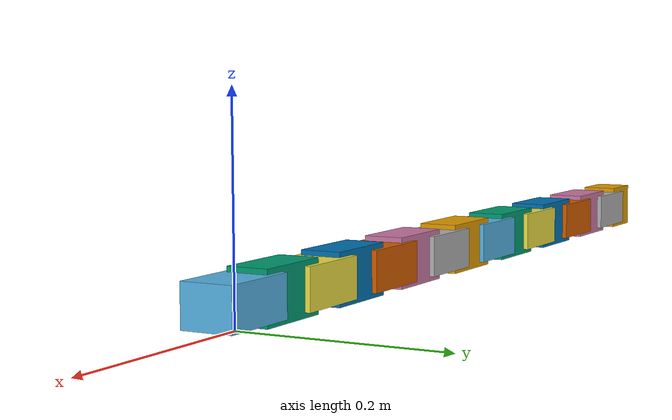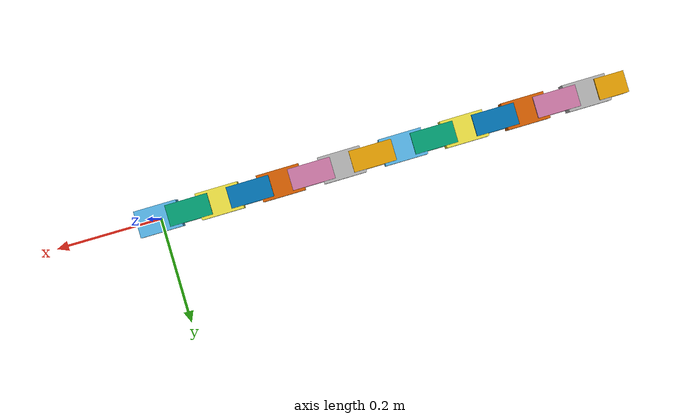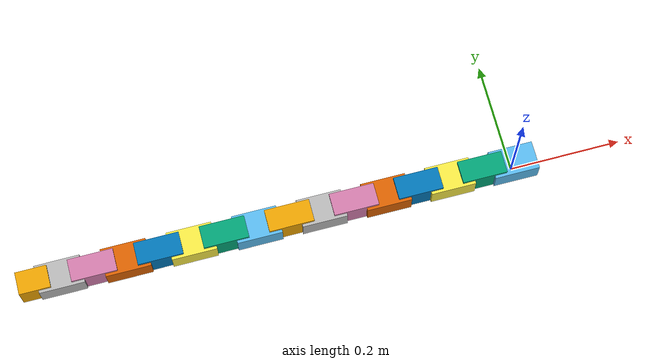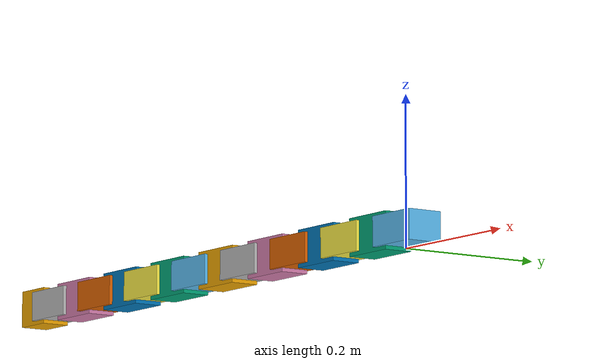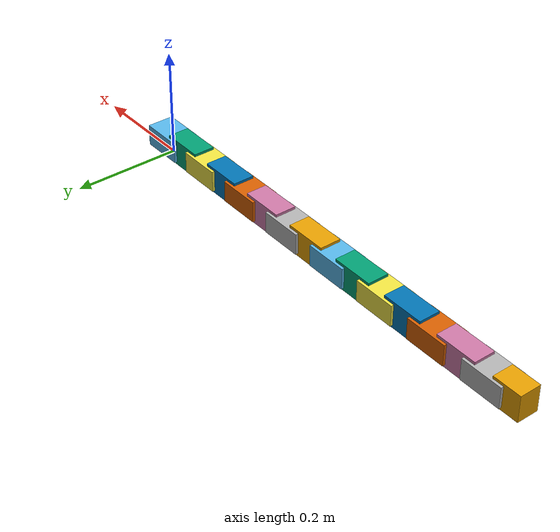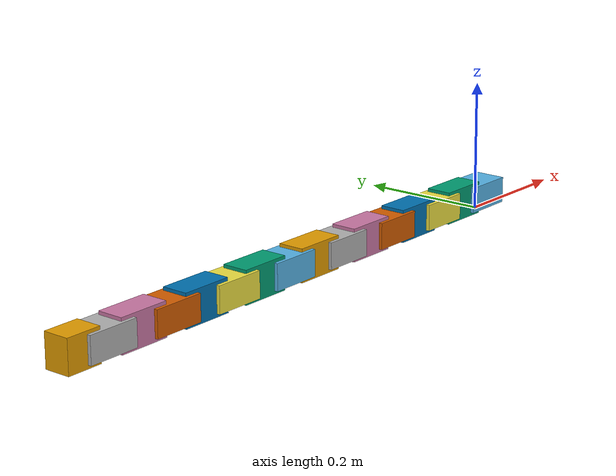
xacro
<?xml version="1.0"?>

<robot name="snake" xmlns:xacro="http://www.ros.org/wiki/xacro">

    <!-- Import all Gazebo-customization elements, including Gazebo colors -->
    <xacro:include filename="$(find snake_description)/urdf/snake.gazebo" />

    <!-- Transmission Macros -->

    <xacro:macro name="gazebo_trans" params="prefix">
        <transmission name="${prefix}_joint_trans">
            <type>transmission_interface/SimpleTransmission</type>
            <joint name="${prefix}_joint">
                <hardwareInterface>hardware_interface/EffortJointInterface</hardwareInterface>
            </joint>
            <actuator name="${prefix}_actuator">
                <hardwareInterface>hardware_interface/EffortJointInterface</hardwareInterface>
                <mechanicalReduction>1</mechanicalReduction>
            </actuator>
        </transmission>
    </xacro:macro>

    <!-- Gazebo Link Property Macros -->
    <xacro:macro name="gazebo_links" params="prefix">
        <gazebo reference="${prefix}">
            <selfCollide>false</selfCollide>
            <mu1 value="0.5"/>
            <mu2 value="0.5"/>
        </gazebo>
    </xacro:macro>

    <link name="base_link">
        <origin xyz="0.0 0.0 0.0"/>
    </link>

    <joint name="base_link_joint" type="fixed">
        <parent link="base_link"/>
        <child link="head"/>
        <origin xyz="0.0 0.0 0.025" rpy="1.57075 0.0 1.57075"/>
    </joint>

    <link name="head">
        <inertial>
            <mass value="0.06"/>
            <inertia ixx="0.00004" ixy="0" ixz="0" iyy="0.0000445" iyz="0" izz="0.0000205"/>
        </inertial>
        <visual>
            <origin xyz="0.0 0.0 0.0" rpy="0.0 0.0 0.0"/>
            <geometry>
                <box size="0.05 0.04 0.08"/>
            </geometry>
        </visual>

        <collision>
            <origin xyz="0.0 0.0 0.02" rpy="0.0 0.0 0.0"/>
            <geometry>
                <box size="0.046 0.036 0.04"/>
            </geometry>
        </collision>
    </link>

    <link name="1_link">
        <inertial>
            <mass value="0.06"/>
            <inertia ixx="0.00004" ixy="0" ixz="0" iyy="0.0000445" iyz="0" izz="0.0000205"/>
        </inertial>
        <visual>
            <origin xyz="0.0 0.0 -0.029" rpy="0.0 0.0 0.0"/>
            <geometry>
                <box size="0.05 0.04 0.08"/>
            </geometry>
        </visual>

        <collision>
            <origin xyz="0.0 0.0 -0.009" rpy="0.0 0.0 0.0"/>
            <geometry>
                <box size="0.046 0.036 0.04"/>
            </geometry>
        </collision>
    </link>

    <link name="2_link">
        <inertial>
            <mass value="0.06"/>
            <inertia ixx="0.00004" ixy="0" ixz="0" iyy="0.0000445" iyz="0" izz="0.0000205"/>
        </inertial>
        <visual>
            <origin xyz="0.0 0.0 -0.029" rpy="0.0 0.0 0.0"/>
            <geometry>
                <box size="0.05 0.04 0.08"/>
            </geometry>
        </visual>

        <collision>
            <origin xyz="0.0 0.0 -0.009" rpy="0.0 0.0 0.0"/>
            <geometry>
                <box size="0.046 0.036 0.04"/>
            </geometry>
        </collision>
    </link>

    <link name="3_link">
        <inertial>
            <mass value="0.06"/>
            <inertia ixx="0.00004" ixy="0" ixz="0" iyy="0.0000445" iyz="0" izz="0.0000205"/>
        </inertial>
        <visual>
            <origin xyz="0.0 0.0 -0.029" rpy="0.0 0.0 0.0"/>
            <geometry>
                <box size="0.05 0.04 0.08"/>
            </geometry>
        </visual>

        <collision>
            <origin xyz="0.0 0.0 -0.009" rpy="0.0 0.0 0.0"/>
            <geometry>
                <box size="0.046 0.036 0.04"/>
            </geometry>
        </collision>
    </link>

    <link name="4_link">
        <inertial>
            <mass value="0.06"/>
            <inertia ixx="0.00004" ixy="0" ixz="0" iyy="0.0000445" iyz="0" izz="0.0000205"/>
        </inertial>
        <visual>
            <origin xyz="0.0 0.0 -0.029" rpy="0.0 0.0 0.0"/>
            <geometry>
                <box size="0.05 0.04 0.08"/>
            </geometry>
        </visual>

        <collision>
            <origin xyz="0.0 0.0 -0.009" rpy="0.0 0.0 0.0"/>
            <geometry>
                <box size="0.046 0.036 0.04"/>
            </geometry>
        </collision>
    </link>

    <link name="5_link">
        <inertial>
            <mass value="0.06"/>
            <inertia ixx="0.00004" ixy="0" ixz="0" iyy="0.0000445" iyz="0" izz="0.0000205"/>
        </inertial>
        <visual>
            <origin xyz="0.0 0.0 -0.029" rpy="0.0 0.0 0.0"/>
            <geometry>
                <box size="0.05 0.04 0.08"/>
            </geometry>
        </visual>

        <collision>
            <origin xyz="0.0 0.0 -0.009" rpy="0.0 0.0 0.0"/>
            <geometry>
                <box size="0.046 0.036 0.04"/>
            </geometry>
        </collision>
    </link>

    <link name="6_link">
        <inertial>
            <mass value="0.06"/>
            <inertia ixx="0.00004" ixy="0" ixz="0" iyy="0.0000445" iyz="0" izz="0.0000205"/>
        </inertial>
        <visual>
            <origin xyz="0.0 0.0 -0.029" rpy="0.0 0.0 0.0"/>
            <geometry>
                <box size="0.05 0.04 0.08"/>
            </geometry>
        </visual>

        <collision>
            <origin xyz="0.0 0.0 -0.009" rpy="0.0 0.0 0.0"/>
            <geometry>
                <box size="0.046 0.036 0.04"/>
            </geometry>
        </collision>
    </link>

    <link name="7_link">
        <inertial>
            <mass value="0.06"/>
            <inertia ixx="0.00004" ixy="0" ixz="0" iyy="0.0000445" iyz="0" izz="0.0000205"/>
        </inertial>
        <visual>
            <origin xyz="0.0 0.0 -0.029" rpy="0.0 0.0 0.0"/>
            <geometry>
                <box size="0.05 0.04 0.08"/>
            </geometry>
        </visual>

        <collision>
            <origin xyz="0.0 0.0 -0.009" rpy="0.0 0.0 0.0"/>
            <geometry>
                <box size="0.046 0.036 0.04"/>
            </geometry>
        </collision>
    </link>

    <link name="8_link">
        <inertial>
            <mass value="0.06"/>
            <inertia ixx="0.00004" ixy="0" ixz="0" iyy="0.0000445" iyz="0" izz="0.0000205"/>
        </inertial>
        <visual>
            <origin xyz="0.0 0.0 -0.029" rpy="0.0 0.0 0.0"/>
            <geometry>
                <box size="0.05 0.04 0.08"/>
            </geometry>
        </visual>

        <collision>
            <origin xyz="0.0 0.0 -0.009" rpy="0.0 0.0 0.0"/>
            <geometry>
                <box size="0.046 0.036 0.04"/>
            </geometry>
        </collision>
    </link>

    <link name="9_link">
        <inertial>
            <mass value="0.06"/>
            <inertia ixx="0.00004" ixy="0" ixz="0" iyy="0.0000445" iyz="0" izz="0.0000205"/>
        </inertial>
        <visual>
            <origin xyz="0.0 0.0 -0.029" rpy="0.0 0.0 0.0"/>
            <geometry>
                <box size="0.05 0.04 0.08"/>
            </geometry>
        </visual>

        <collision>
            <origin xyz="0.0 0.0 -0.009" rpy="0.0 0.0 0.0"/>
            <geometry>
                <box size="0.046 0.036 0.04"/>
            </geometry>
        </collision>
    </link>

    <link name="10_link">
        <inertial>
            <mass value="0.06"/>
            <inertia ixx="0.00004" ixy="0" ixz="0" iyy="0.0000445" iyz="0" izz="0.0000205"/>
        </inertial>
        <visual>
            <origin xyz="0.0 0.0 -0.029" rpy="0.0 0.0 0.0"/>
            <geometry>
                <box size="0.05 0.04 0.08"/>
            </geometry>
        </visual>

        <collision>
            <origin xyz="0.0 0.0 -0.009" rpy="0.0 0.0 0.0"/>
            <geometry>
                <box size="0.046 0.036 0.04"/>
            </geometry>
        </collision>
    </link>

    <link name="11_link">
        <inertial>
            <mass value="0.06"/>
            <inertia ixx="0.00004" ixy="0" ixz="0" iyy="0.0000445" iyz="0" izz="0.0000205"/>
        </inertial>
        <visual>
            <origin xyz="0.0 0.0 -0.029" rpy="0.0 0.0 0.0"/>
            <geometry>
                <box size="0.05 0.04 0.08"/>
            </geometry>
        </visual>

        <collision>
            <origin xyz="0.0 0.0 -0.009" rpy="0.0 0.0 0.0"/>
            <geometry>
                <box size="0.046 0.036 0.04"/>
            </geometry>
        </collision>
    </link>

    <link name="12_link">
        <inertial>
            <mass value="0.06"/>
            <inertia ixx="0.00004" ixy="0" ixz="0" iyy="0.0000445" iyz="0" izz="0.0000205"/>
        </inertial>
        <visual>
            <origin xyz="0.0 0.0 -0.029" rpy="0.0 0.0 0.0"/>
            <geometry>
                <box size="0.05 0.04 0.08"/>
            </geometry>
        </visual>

        <collision>
            <origin xyz="0.0 0.0 -0.009" rpy="0.0 0.0 0.0"/>
            <geometry>
                <box size="0.046 0.036 0.04"/>
            </geometry>
        </collision>
    </link>

    <link name="13_link">
        <inertial>
            <mass value="0.06"/>
            <inertia ixx="0.00004" ixy="0" ixz="0" iyy="0.0000445" iyz="0" izz="0.0000205"/>
        </inertial>
        <visual>
            <origin xyz="0.0 0.0 -0.029" rpy="0.0 0.0 0.0"/>
            <geometry>
                <box size="0.05 0.04 0.08"/>
            </geometry>
        </visual>

        <collision>
            <origin xyz="0.0 0.0 -0.009" rpy="0.0 0.0 0.0"/>
            <geometry>
                <box size="0.046 0.036 0.04"/>
            </geometry>
        </collision>
    </link>

    <link name="14_link">
        <inertial>
            <mass value="0.06"/>
            <inertia ixx="0.00004" ixy="0" ixz="0" iyy="0.0000445" iyz="0" izz="0.0000205"/>
        </inertial>
        <visual>
            <origin xyz="0.0 0.0 -0.029" rpy="0.0 0.0 0.0"/>
            <geometry>
                <box size="0.05 0.04 0.08"/>
            </geometry>
        </visual>

        <collision>
            <origin xyz="0.0 0.0 -0.009" rpy="0.0 0.0 0.0"/>
            <geometry>
                <box size="0.046 0.036 0.04"/>
            </geometry>
        </collision>
    </link>

    <link name="15_link">
        <inertial>
            <mass value="0.06"/>
            <inertia ixx="0.00004" ixy="0" ixz="0" iyy="0.0000445" iyz="0" izz="0.0000205"/>
        </inertial>
        <visual>
            <origin xyz="0.0 0.0 -0.0165" rpy="0.0 0.0 0.0"/>
            <geometry>
                <box size="0.05 0.04 0.055"/>
            </geometry>
        </visual>

        <collision>
            <origin xyz="0.0 0.0 -0.0165" rpy="0.0 0.0 0.0"/>
            <geometry>
                <box size="0.046 0.036 0.055"/>
            </geometry>
        </collision>
    </link>

    <joint name="1_joint" type="revolute">
        <parent link="head"/>
        <child link="1_link"/>
        <origin xyz="0.0 0.0 -0.029" rpy="0.0 0.0 1.57075"/>
        <axis xyz="0 1 0"/>
        <limit lower="-1.57075" upper="1.57075" effort="1.0" velocity="10.0"/>
    </joint>

    <joint name="2_joint" type="revolute">
        <parent link="1_link"/>
        <child link="2_link"/>
        <origin xyz="0.0 0.0 -0.058" rpy="0.0 0.0 -1.57075"/>
        <axis xyz="0 1 0"/>
        <limit lower="-1.57075" upper="1.57075" effort="1.0" velocity="10.0"/>
    </joint>

    <joint name="3_joint" type="revolute">
        <parent link="2_link"/>
        <child link="3_link"/>
        <origin xyz="0.0 0.0 -0.058" rpy="0.0 0.0 1.57075"/>
        <axis xyz="0 1 0"/>
        <limit lower="-1.57075" upper="1.57075" effort="1.0" velocity="10.0"/>
    </joint>

    <joint name="4_joint" type="revolute">
        <parent link="3_link"/>
        <child link="4_link"/>
        <origin xyz="0.0 0.0 -0.058" rpy="0.0 0.0 1.57075"/>
        <axis xyz="0 1 0"/>
        <limit lower="-1.57075" upper="1.57075" effort="1.0" velocity="10.0"/>
    </joint>

    <joint name="5_joint" type="revolute">
        <parent link="4_link"/>
        <child link="5_link"/>
        <origin xyz="0.0 0.0 -0.058" rpy="0.0 0.0 1.57075"/>
        <axis xyz="0 1 0"/>
        <limit lower="-1.57075" upper="1.57075" effort="1.0" velocity="10.0"/>
    </joint>

    <joint name="6_joint" type="revolute">
        <parent link="5_link"/>
        <child link="6_link"/>
        <origin xyz="0.0 0.0 -0.058" rpy="0.0 0.0 1.57075"/>
        <axis xyz="0 1 0"/>
        <limit lower="-1.57075" upper="1.57075" effort="1.0" velocity="10.0"/>
    </joint>

    <joint name="7_joint" type="revolute">
        <parent link="6_link"/>
        <child link="7_link"/>
        <origin xyz="0.0 0.0 -0.058" rpy="0.0 0.0 1.57075"/>
        <axis xyz="0 1 0"/>
        <limit lower="-1.57075" upper="1.57075" effort="1.0" velocity="10.0"/>
    </joint>

    <joint name="8_joint" type="revolute">
        <parent link="7_link"/>
        <child link="8_link"/>
        <origin xyz="0.0 0.0 -0.058" rpy="0.0 0.0 1.57075"/>
        <axis xyz="0 1 0"/>
        <limit lower="-1.57075" upper="1.57075" effort="1.0" velocity="10.0"/>
    </joint>

    <joint name="9_joint" type="revolute">
        <parent link="8_link"/>
        <child link="9_link"/>
        <origin xyz="0.0 0.0 -0.058" rpy="0.0 0.0 1.57075"/>
        <axis xyz="0 1 0"/>
        <limit lower="-1.57075" upper="1.57075" effort="1.0" velocity="10.0"/>
    </joint>

    <joint name="10_joint" type="revolute">
        <parent link="9_link"/>
        <child link="10_link"/>
        <origin xyz="0.0 0.0 -0.058" rpy="0.0 0.0 1.57075"/>
        <axis xyz="0 1 0"/>
        <limit lower="-1.57075" upper="1.57075" effort="1.0" velocity="10.0"/>
    </joint>

    <joint name="11_joint" type="revolute">
        <parent link="10_link"/>
        <child link="11_link"/>
        <origin xyz="0.0 0.0 -0.058" rpy="0.0 0.0 1.57075"/>
        <axis xyz="0 1 0"/>
        <limit lower="-1.57075" upper="1.57075" effort="1.0" velocity="10.0"/>
    </joint>

    <joint name="12_joint" type="revolute">
        <parent link="11_link"/>
        <child link="12_link"/>
        <origin xyz="0.0 0.0 -0.058" rpy="0.0 0.0 1.57075"/>
        <axis xyz="0 1 0"/>
        <limit lower="-1.57075" upper="1.57075" effort="1.0" velocity="10.0"/>
    </joint>

    <joint name="13_joint" type="revolute">
        <parent link="12_link"/>
        <child link="13_link"/>
        <origin xyz="0.0 0.0 -0.058" rpy="0.0 0.0 1.57075"/>
        <axis xyz="0 1 0"/>
        <limit lower="-1.57075" upper="1.57075" effort="1.0" velocity="10.0"/>
    </joint>

    <joint name="14_joint" type="revolute">
        <parent link="13_link"/>
        <child link="14_link"/>
        <origin xyz="0.0 0.0 -0.058" rpy="0.0 0.0 1.57075"/>
        <axis xyz="0 1 0"/>
        <limit lower="-1.57075" upper="1.57075" effort="1.0" velocity="10.0"/>
    </joint>

    <joint name="15_joint" type="revolute">
        <parent link="14_link"/>
        <child link="15_link"/>
        <origin xyz="0.0 0.0 -0.058" rpy="0.0 0.0 1.57075"/>
        <axis xyz="0 1 0"/>
        <limit lower="-1.57075" upper="1.57075" effort="1.0" velocity="10.0"/>
    </joint>

    <!-- Transmissions -->
    <xacro:gazebo_trans prefix="1"/>
    <xacro:gazebo_trans prefix="2"/>
    <xacro:gazebo_trans prefix="3"/>
    <xacro:gazebo_trans prefix="4"/>
    <xacro:gazebo_trans prefix="5"/>
    <xacro:gazebo_trans prefix="6"/>
    <xacro:gazebo_trans prefix="7"/>
    <xacro:gazebo_trans prefix="8"/>
    <xacro:gazebo_trans prefix="9"/>
    <xacro:gazebo_trans prefix="10"/>
    <xacro:gazebo_trans prefix="11"/>
    <xacro:gazebo_trans prefix="12"/>
    <xacro:gazebo_trans prefix="13"/>
    <xacro:gazebo_trans prefix="14"/>
    <xacro:gazebo_trans prefix="15"/>

    <!-- Link Propertys -->
    <xacro:gazebo_links prefix="head"/>
    <xacro:gazebo_links prefix="1_link"/>
    <xacro:gazebo_links prefix="2_link"/>
    <xacro:gazebo_links prefix="3_link"/>
    <xacro:gazebo_links prefix="4_link"/>
    <xacro:gazebo_links prefix="5_link"/>
    <xacro:gazebo_links prefix="6_link"/>
    <xacro:gazebo_links prefix="7_link"/>
    <xacro:gazebo_links prefix="8_link"/>
    <xacro:gazebo_links prefix="9_link"/>
    <xacro:gazebo_links prefix="10_link"/>
    <xacro:gazebo_links prefix="11_link"/>
    <xacro:gazebo_links prefix="12_link"/>
    <xacro:gazebo_links prefix="13_link"/>
    <xacro:gazebo_links prefix="14_link"/>
    <xacro:gazebo_links prefix="15_link"/>

</robot>
